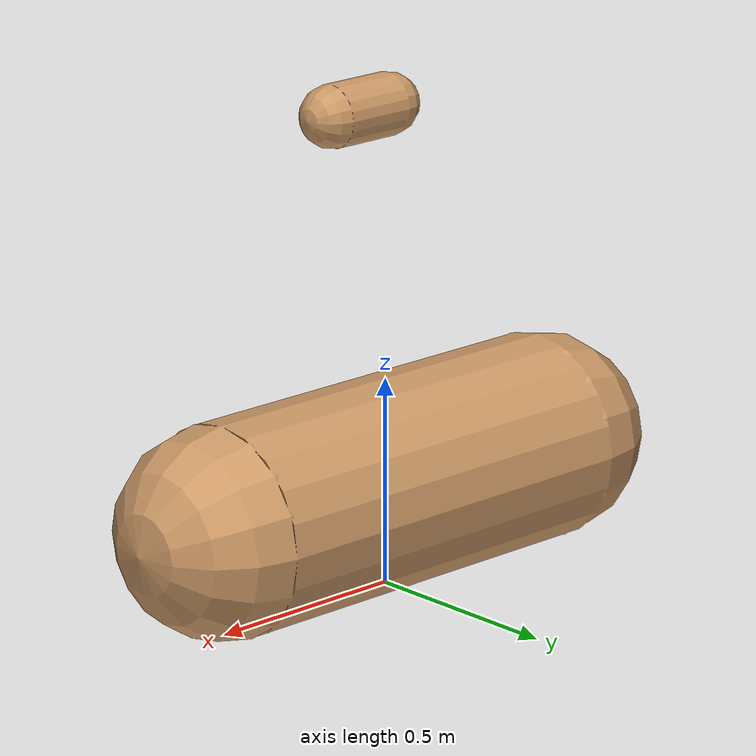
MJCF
<mujoco model="humanoid">
    <compiler angle="degree" inertiafromgeom="true" />
    <default>
        <geom rgba=".8 .6 .4 1" condim="3" />
        <default class="damped_joint">
            <joint damping="2" stiffness="2.0" armature="0.02" />
        </default>
    </default>
    <option timestep="0.0008" iterations="10"/>
    <worldbody>
      <body name="pelvis" pos="0.385 0.32 1.26918883">
        <site name="pelvis" pos="0 0 0" />
        <geom fromto="-0.081889035416171 0.009999999999999983 0.0 0.081889035416171 0.010000000000000018 0.0" name="pelvis_geom" size="0.07" mass="10.928" type="capsule"/>
      </body>
      <body name="body2" pos="0 0 0.25" quat="0.7 0.7 0 0">
        <joint axis="1 0 0" name="free2" pos="0 0 0" type="free"/>
        <geom name="cap1" fromto="-0.5 0.0 0 0.5 0.0 0" pos="0 0 0" size="0.25" type="capsule"/>
      </body>
    </worldbody>
</mujoco>
